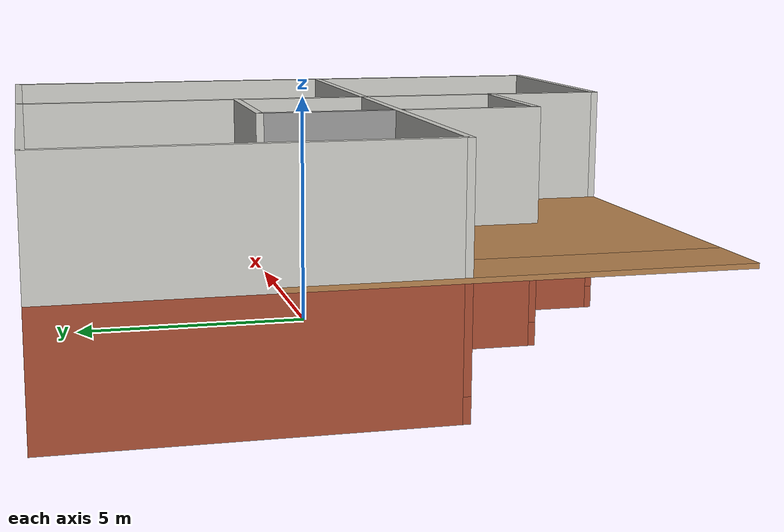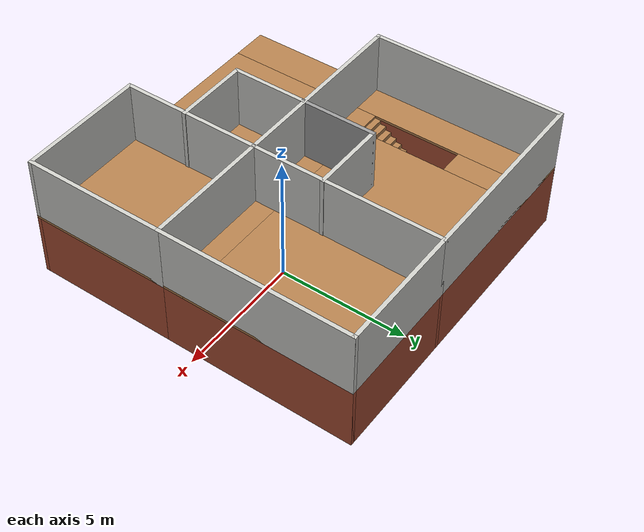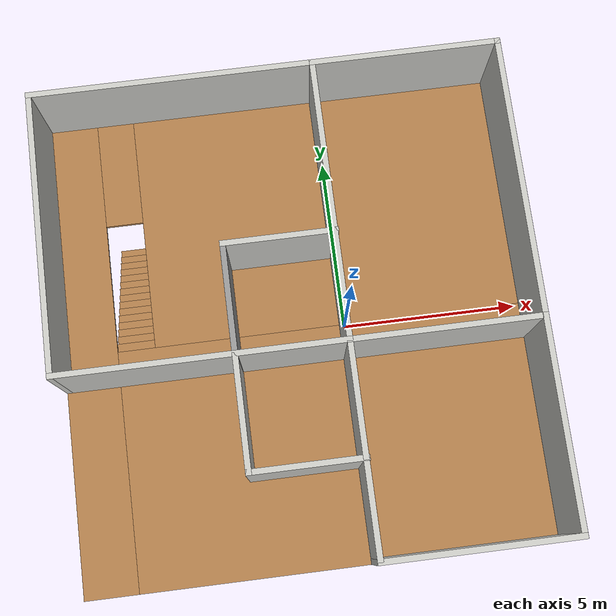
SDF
<?xml version='1.0'?>
<sdf version='1.7'>
  <model name='house'>
    <pose>-1.47441 -0.321633 0 0 -0 0</pose>
    <link name='Floor_0'>
      <pose>0 -0 2.5 0 -0 0</pose>
      <visual name='Floor_0_Visual_0'>
        <pose>-5.46939 0 0.05 0 -0 0</pose>
        <geometry>
          <box>
            <size>1.41122 12.85 0.1</size>
          </box>
        </geometry>
        <material>
          <script>
            <uri>file://media/materials/scripts/gazebo.material</uri>
            <name>Gazebo/Wood</name>
          </script>
          <ambient>1 1 1 1</ambient>
        </material>
        <meta>
          <layer>1</layer>
        </meta>
      </visual>
      <collision name='Floor_0_Collision_0'>
        <geometry>
          <box>
            <size>1.41122 12.85 0.1</size>
          </box>
        </geometry>
        <pose>-5.46939 0 0.05 0 -0 0</pose>
      </collision>
      <visual name='Floor_0_Visual_1'>
        <pose>0.705607 -3.27897 0.05 0 -0 0</pose>
        <geometry>
          <box>
            <size>10.9388 6.29206 0.1</size>
          </box>
        </geometry>
        <material>
          <script>
            <uri>file://media/materials/scripts/gazebo.material</uri>
            <name>Gazebo/Wood</name>
          </script>
          <ambient>1 1 1 1</ambient>
        </material>
        <meta>
          <layer>1</layer>
        </meta>
      </visual>
      <collision name='Floor_0_Collision_1'>
        <geometry>
          <box>
            <size>10.9388 6.29206 0.1</size>
          </box>
        </geometry>
        <pose>0.705607 -3.27897 0.05 0 -0 0</pose>
      </collision>
      <visual name='Floor_0_Visual_2'>
        <pose>1.20561 3.14603 0.05 0 -0 0</pose>
        <geometry>
          <box>
            <size>9.93878 6.55794 0.1</size>
          </box>
        </geometry>
        <material>
          <script>
            <uri>file://media/materials/scripts/gazebo.material</uri>
            <name>Gazebo/Wood</name>
          </script>
          <ambient>1 1 1 1</ambient>
        </material>
        <meta>
          <layer>1</layer>
        </meta>
      </visual>
      <collision name='Floor_0_Collision_2'>
        <geometry>
          <box>
            <size>9.93878 6.55794 0.1</size>
          </box>
        </geometry>
        <pose>1.20561 3.14603 0.05 0 -0 0</pose>
      </collision>
      <visual name='Floor_0_Visual_3'>
        <pose>-4.26379 4.89603 0.05 0 -0 0</pose>
        <geometry>
          <box>
            <size>1 3.05794 0.1</size>
          </box>
        </geometry>
        <material>
          <script>
            <uri>file://media/materials/scripts/gazebo.material</uri>
            <name>Gazebo/Wood</name>
          </script>
          <ambient>1 1 1 1</ambient>
        </material>
        <meta>
          <layer>1</layer>
        </meta>
      </visual>
      <collision name='Floor_0_Collision_3'>
        <geometry>
          <box>
            <size>1 3.05794 0.1</size>
          </box>
        </geometry>
        <pose>-4.26379 4.89603 0.05 0 -0 0</pose>
      </collision>
    </link>
    <link name='Stairs_0'>
      <visual name='Stairs_0_Visual_0'>
        <pose>-4.26379 3.25039 0.083333 0 -0 0</pose>
        <geometry>
          <box>
            <size>1 0.233333 0.166667</size>
          </box>
        </geometry>
        <material>
          <script>
            <uri>file://media/materials/scripts/gazebo.material</uri>
            <name>Gazebo/Wood</name>
          </script>
          <ambient>1 1 1 1</ambient>
        </material>
        <meta>
          <layer>0</layer>
        </meta>
      </visual>
      <collision name='Stairs_0_Collision_0'>
        <geometry>
          <box>
            <size>1 0.233333 0.166667</size>
          </box>
        </geometry>
        <pose>-4.26379 3.25039 0.083333 0 -0 0</pose>
      </collision>
      <visual name='Stairs_0_Visual_1'>
        <pose>-4.26379 3.01706 0.25 0 -0 0</pose>
        <geometry>
          <box>
            <size>1 0.233333 0.166667</size>
          </box>
        </geometry>
        <material>
          <script>
            <uri>file://media/materials/scripts/gazebo.material</uri>
            <name>Gazebo/Wood</name>
          </script>
          <ambient>1 1 1 1</ambient>
        </material>
        <meta>
          <layer>0</layer>
        </meta>
      </visual>
      <collision name='Stairs_0_Collision_1'>
        <geometry>
          <box>
            <size>1 0.233333 0.166667</size>
          </box>
        </geometry>
        <pose>-4.26379 3.01706 0.25 0 -0 0</pose>
      </collision>
      <visual name='Stairs_0_Visual_2'>
        <pose>-4.26379 2.78373 0.416667 0 -0 0</pose>
        <geometry>
          <box>
            <size>1 0.233333 0.166667</size>
          </box>
        </geometry>
        <material>
          <script>
            <uri>file://media/materials/scripts/gazebo.material</uri>
            <name>Gazebo/Wood</name>
          </script>
          <ambient>1 1 1 1</ambient>
        </material>
        <meta>
          <layer>0</layer>
        </meta>
      </visual>
      <collision name='Stairs_0_Collision_2'>
        <geometry>
          <box>
            <size>1 0.233333 0.166667</size>
          </box>
        </geometry>
        <pose>-4.26379 2.78373 0.416667 0 -0 0</pose>
      </collision>
      <visual name='Stairs_0_Visual_3'>
        <pose>-4.26379 2.55039 0.583333 0 -0 0</pose>
        <geometry>
          <box>
            <size>1 0.233333 0.166667</size>
          </box>
        </geometry>
        <material>
          <script>
            <uri>file://media/materials/scripts/gazebo.material</uri>
            <name>Gazebo/Wood</name>
          </script>
          <ambient>1 1 1 1</ambient>
        </material>
        <meta>
          <layer>0</layer>
        </meta>
      </visual>
      <collision name='Stairs_0_Collision_3'>
        <geometry>
          <box>
            <size>1 0.233333 0.166667</size>
          </box>
        </geometry>
        <pose>-4.26379 2.55039 0.583333 0 -0 0</pose>
      </collision>
      <visual name='Stairs_0_Visual_4'>
        <pose>-4.26379 2.31706 0.75 0 -0 0</pose>
        <geometry>
          <box>
            <size>1 0.233333 0.166667</size>
          </box>
        </geometry>
        <material>
          <script>
            <uri>file://media/materials/scripts/gazebo.material</uri>
            <name>Gazebo/Wood</name>
          </script>
          <ambient>1 1 1 1</ambient>
        </material>
        <meta>
          <layer>0</layer>
        </meta>
      </visual>
      <collision name='Stairs_0_Collision_4'>
        <geometry>
          <box>
            <size>1 0.233333 0.166667</size>
          </box>
        </geometry>
        <pose>-4.26379 2.31706 0.75 0 -0 0</pose>
      </collision>
      <visual name='Stairs_0_Visual_5'>
        <pose>-4.26379 2.08373 0.916667 0 -0 0</pose>
        <geometry>
          <box>
            <size>1 0.233333 0.166667</size>
          </box>
        </geometry>
        <material>
          <script>
            <uri>file://media/materials/scripts/gazebo.material</uri>
            <name>Gazebo/Wood</name>
          </script>
          <ambient>1 1 1 1</ambient>
        </material>
        <meta>
          <layer>0</layer>
        </meta>
      </visual>
      <collision name='Stairs_0_Collision_5'>
        <geometry>
          <box>
            <size>1 0.233333 0.166667</size>
          </box>
        </geometry>
        <pose>-4.26379 2.08373 0.916667 0 -0 0</pose>
      </collision>
      <visual name='Stairs_0_Visual_6'>
        <pose>-4.26379 1.85039 1.08333 0 -0 0</pose>
        <geometry>
          <box>
            <size>1 0.233333 0.166667</size>
          </box>
        </geometry>
        <material>
          <script>
            <uri>file://media/materials/scripts/gazebo.material</uri>
            <name>Gazebo/Wood</name>
          </script>
          <ambient>1 1 1 1</ambient>
        </material>
        <meta>
          <layer>0</layer>
        </meta>
      </visual>
      <collision name='Stairs_0_Collision_6'>
        <geometry>
          <box>
            <size>1 0.233333 0.166667</size>
          </box>
        </geometry>
        <pose>-4.26379 1.85039 1.08333 0 -0 0</pose>
      </collision>
      <visual name='Stairs_0_Visual_7'>
        <pose>-4.26379 1.61706 1.25 0 -0 0</pose>
        <geometry>
          <box>
            <size>1 0.233333 0.166667</size>
          </box>
        </geometry>
        <material>
          <script>
            <uri>file://media/materials/scripts/gazebo.material</uri>
            <name>Gazebo/Wood</name>
          </script>
          <ambient>1 1 1 1</ambient>
        </material>
        <meta>
          <layer>0</layer>
        </meta>
      </visual>
      <collision name='Stairs_0_Collision_7'>
        <geometry>
          <box>
            <size>1 0.233333 0.166667</size>
          </box>
        </geometry>
        <pose>-4.26379 1.61706 1.25 0 -0 0</pose>
      </collision>
      <visual name='Stairs_0_Visual_8'>
        <pose>-4.26379 1.38373 1.41667 0 -0 0</pose>
        <geometry>
          <box>
            <size>1 0.233333 0.166667</size>
          </box>
        </geometry>
        <material>
          <script>
            <uri>file://media/materials/scripts/gazebo.material</uri>
            <name>Gazebo/Wood</name>
          </script>
          <ambient>1 1 1 1</ambient>
        </material>
        <meta>
          <layer>0</layer>
        </meta>
      </visual>
      <collision name='Stairs_0_Collision_8'>
        <geometry>
          <box>
            <size>1 0.233333 0.166667</size>
          </box>
        </geometry>
        <pose>-4.26379 1.38373 1.41667 0 -0 0</pose>
      </collision>
      <visual name='Stairs_0_Visual_9'>
        <pose>-4.26379 1.15039 1.58333 0 -0 0</pose>
        <geometry>
          <box>
            <size>1 0.233333 0.166667</size>
          </box>
        </geometry>
        <material>
          <script>
            <uri>file://media/materials/scripts/gazebo.material</uri>
            <name>Gazebo/Wood</name>
          </script>
          <ambient>1 1 1 1</ambient>
        </material>
        <meta>
          <layer>0</layer>
        </meta>
      </visual>
      <collision name='Stairs_0_Collision_9'>
        <geometry>
          <box>
            <size>1 0.233333 0.166667</size>
          </box>
        </geometry>
        <pose>-4.26379 1.15039 1.58333 0 -0 0</pose>
      </collision>
      <visual name='Stairs_0_Visual_10'>
        <pose>-4.26379 0.917061 1.75 0 -0 0</pose>
        <geometry>
          <box>
            <size>1 0.233333 0.166667</size>
          </box>
        </geometry>
        <material>
          <script>
            <uri>file://media/materials/scripts/gazebo.material</uri>
            <name>Gazebo/Wood</name>
          </script>
          <ambient>1 1 1 1</ambient>
        </material>
        <meta>
          <layer>0</layer>
        </meta>
      </visual>
      <collision name='Stairs_0_Collision_10'>
        <geometry>
          <box>
            <size>1 0.233333 0.166667</size>
          </box>
        </geometry>
        <pose>-4.26379 0.917061 1.75 0 -0 0</pose>
      </collision>
      <visual name='Stairs_0_Visual_11'>
        <pose>-4.26379 0.683727 1.91667 0 -0 0</pose>
        <geometry>
          <box>
            <size>1 0.233333 0.166667</size>
          </box>
        </geometry>
        <material>
          <script>
            <uri>file://media/materials/scripts/gazebo.material</uri>
            <name>Gazebo/Wood</name>
          </script>
          <ambient>1 1 1 1</ambient>
        </material>
        <meta>
          <layer>0</layer>
        </meta>
      </visual>
      <collision name='Stairs_0_Collision_11'>
        <geometry>
          <box>
            <size>1 0.233333 0.166667</size>
          </box>
        </geometry>
        <pose>-4.26379 0.683727 1.91667 0 -0 0</pose>
      </collision>
      <visual name='Stairs_0_Visual_12'>
        <pose>-4.26379 0.450394 2.08333 0 -0 0</pose>
        <geometry>
          <box>
            <size>1 0.233333 0.166667</size>
          </box>
        </geometry>
        <material>
          <script>
            <uri>file://media/materials/scripts/gazebo.material</uri>
            <name>Gazebo/Wood</name>
          </script>
          <ambient>1 1 1 1</ambient>
        </material>
        <meta>
          <layer>0</layer>
        </meta>
      </visual>
      <collision name='Stairs_0_Collision_12'>
        <geometry>
          <box>
            <size>1 0.233333 0.166667</size>
          </box>
        </geometry>
        <pose>-4.26379 0.450394 2.08333 0 -0 0</pose>
      </collision>
      <visual name='Stairs_0_Visual_13'>
        <pose>-4.26379 0.217061 2.25 0 -0 0</pose>
        <geometry>
          <box>
            <size>1 0.233333 0.166667</size>
          </box>
        </geometry>
        <material>
          <script>
            <uri>file://media/materials/scripts/gazebo.material</uri>
            <name>Gazebo/Wood</name>
          </script>
          <ambient>1 1 1 1</ambient>
        </material>
        <meta>
          <layer>0</layer>
        </meta>
      </visual>
      <collision name='Stairs_0_Collision_13'>
        <geometry>
          <box>
            <size>1 0.233333 0.166667</size>
          </box>
        </geometry>
        <pose>-4.26379 0.217061 2.25 0 -0 0</pose>
      </collision>
      <visual name='Stairs_0_Visual_14'>
        <pose>-4.26379 -0.016273 2.41667 0 -0 0</pose>
        <geometry>
          <box>
            <size>1 0.233333 0.166667</size>
          </box>
        </geometry>
        <material>
          <script>
            <uri>file://media/materials/scripts/gazebo.material</uri>
            <name>Gazebo/Wood</name>
          </script>
          <ambient>1 1 1 1</ambient>
        </material>
        <meta>
          <layer>0</layer>
        </meta>
      </visual>
      <collision name='Stairs_0_Collision_14'>
        <geometry>
          <box>
            <size>1 0.233333 0.166667</size>
          </box>
        </geometry>
        <pose>-4.26379 -0.016273 2.41667 0 -0 0</pose>
      </collision>
    </link>
    <link name='Wall_42'>
      <collision name='Wall_42_Collision'>
        <geometry>
          <box>
            <size>7.5 0.15 2.5</size>
          </box>
        </geometry>
        <pose>0 0 1.25 0 -0 0</pose>
      </collision>
      <visual name='Wall_42_Visual'>
        <pose>0 0 1.25 0 -0 0</pose>
        <geometry>
          <box>
            <size>7.5 0.15 2.5</size>
          </box>
        </geometry>
        <material>
          <script>
            <uri>file://media/materials/scripts/gazebo.material</uri>
            <name>Gazebo/Bricks</name>
          </script>
          <ambient>1 1 1 1</ambient>
        </material>
        <meta>
          <layer>0</layer>
        </meta>
      </visual>
      <pose>-2.425 6.35 0 0 -0 0</pose>
    </link>
    <link name='Wall_43'>
      <pose>1.25 2.675 0 0 -0 -1.5708</pose>
      <visual name='Wall_43_Visual_0'>
        <pose>-1.07719 0 1.25 0 -0 0</pose>
        <geometry>
          <box>
            <size>5.34563 0.15 2.5</size>
          </box>
        </geometry>
        <material>
          <script>
            <uri>file://media/materials/scripts/gazebo.material</uri>
            <name>Gazebo/Bricks</name>
          </script>
          <ambient>1 1 1 1</ambient>
        </material>
        <meta>
          <layer>0</layer>
        </meta>
      </visual>
      <collision name='Wall_43_Collision_0'>
        <geometry>
          <box>
            <size>5.34563 0.15 2.5</size>
          </box>
        </geometry>
        <pose>-1.07719 0 1.25 0 -0 0</pose>
      </collision>
      <visual name='Wall_43_Visual_1'>
        <pose>3.12281 0 1.25 0 -0 0</pose>
        <geometry>
          <box>
            <size>1.25437 0.15 2.5</size>
          </box>
        </geometry>
        <material>
          <script>
            <uri>file://media/materials/scripts/gazebo.material</uri>
            <name>Gazebo/Bricks</name>
          </script>
          <ambient>1 1 1 1</ambient>
        </material>
        <meta>
          <layer>0</layer>
        </meta>
      </visual>
      <collision name='Wall_43_Collision_1'>
        <geometry>
          <box>
            <size>1.25437 0.15 2.5</size>
          </box>
        </geometry>
        <pose>3.12281 0 1.25 0 -0 0</pose>
      </collision>
      <visual name='Wall_43_Visual_2'>
        <pose>2.04563 0 2.25 0 -0 0</pose>
        <geometry>
          <box>
            <size>0.9 0.15 0.5</size>
          </box>
        </geometry>
        <material>
          <script>
            <uri>file://media/materials/scripts/gazebo.material</uri>
            <name>Gazebo/Bricks</name>
          </script>
          <ambient>1 1 1 1</ambient>
        </material>
        <meta>
          <layer>0</layer>
        </meta>
      </visual>
      <collision name='Wall_43_Collision_2'>
        <geometry>
          <box>
            <size>0.9 0.15 0.5</size>
          </box>
        </geometry>
        <pose>2.04563 0 2.25 0 -0 0</pose>
      </collision>
    </link>
    <link name='Wall_44'>
      <pose>-2.425 -1 0 0 -0 3.14159</pose>
      <visual name='Wall_44_Visual_0'>
        <pose>-2.98492 0 1.25 0 -0 0</pose>
        <geometry>
          <box>
            <size>1.53015 0.15 2.5</size>
          </box>
        </geometry>
        <material>
          <script>
            <uri>file://media/materials/scripts/gazebo.material</uri>
            <name>Gazebo/Bricks</name>
          </script>
          <ambient>1 1 1 1</ambient>
        </material>
        <meta>
          <layer>0</layer>
        </meta>
      </visual>
      <collision name='Wall_44_Collision_0'>
        <geometry>
          <box>
            <size>1.53015 0.15 2.5</size>
          </box>
        </geometry>
        <pose>-2.98492 0 1.25 0 -0 0</pose>
      </collision>
      <visual name='Wall_44_Visual_1'>
        <pose>-0.001671 0 1.25 0 -0 0</pose>
        <geometry>
          <box>
            <size>2.63635 0.15 2.5</size>
          </box>
        </geometry>
        <material>
          <script>
            <uri>file://media/materials/scripts/gazebo.material</uri>
            <name>Gazebo/Bricks</name>
          </script>
          <ambient>1 1 1 1</ambient>
        </material>
        <meta>
          <layer>0</layer>
        </meta>
      </visual>
      <collision name='Wall_44_Collision_1'>
        <geometry>
          <box>
            <size>2.63635 0.15 2.5</size>
          </box>
        </geometry>
        <pose>-0.001671 0 1.25 0 -0 0</pose>
      </collision>
      <visual name='Wall_44_Visual_2'>
        <pose>2.53325 0 0.25 0 -0 0</pose>
        <geometry>
          <box>
            <size>2.4335 0.15 0.5</size>
          </box>
        </geometry>
        <material>
          <script>
            <uri>file://media/materials/scripts/gazebo.material</uri>
            <name>Gazebo/Bricks</name>
          </script>
          <ambient>1 1 1 1</ambient>
        </material>
        <meta>
          <layer>0</layer>
        </meta>
      </visual>
      <collision name='Wall_44_Collision_2'>
        <geometry>
          <box>
            <size>2.4335 0.15 0.5</size>
          </box>
        </geometry>
        <pose>2.53325 0 0.25 0 -0 0</pose>
      </collision>
      <visual name='Wall_44_Visual_3'>
        <pose>2.93325 0 1.5 0 -0 0</pose>
        <geometry>
          <box>
            <size>1.63349 0.15 2</size>
          </box>
        </geometry>
        <material>
          <script>
            <uri>file://media/materials/scripts/gazebo.material</uri>
            <name>Gazebo/Bricks</name>
          </script>
          <ambient>1 1 1 1</ambient>
        </material>
        <meta>
          <layer>0</layer>
        </meta>
      </visual>
      <collision name='Wall_44_Collision_3'>
        <geometry>
          <box>
            <size>1.63349 0.15 2</size>
          </box>
        </geometry>
        <pose>2.93325 0 1.5 0 -0 0</pose>
      </collision>
      <visual name='Wall_44_Visual_4'>
        <pose>1.7165 0 1.9 0 -0 0</pose>
        <geometry>
          <box>
            <size>0.8 0.15 1.2</size>
          </box>
        </geometry>
        <material>
          <script>
            <uri>file://media/materials/scripts/gazebo.material</uri>
            <name>Gazebo/Bricks</name>
          </script>
          <ambient>1 1 1 1</ambient>
        </material>
        <meta>
          <layer>0</layer>
        </meta>
      </visual>
      <collision name='Wall_44_Collision_4'>
        <geometry>
          <box>
            <size>0.8 0.15 1.2</size>
          </box>
        </geometry>
        <pose>1.7165 0 1.9 0 -0 0</pose>
      </collision>
      <visual name='Wall_44_Visual_5'>
        <pose>-1.76985 0 2.25 0 -0 0</pose>
        <geometry>
          <box>
            <size>0.9 0.15 0.5</size>
          </box>
        </geometry>
        <material>
          <script>
            <uri>file://media/materials/scripts/gazebo.material</uri>
            <name>Gazebo/Bricks</name>
          </script>
          <ambient>1 1 1 1</ambient>
        </material>
        <meta>
          <layer>0</layer>
        </meta>
      </visual>
      <collision name='Wall_44_Collision_5'>
        <geometry>
          <box>
            <size>0.9 0.15 0.5</size>
          </box>
        </geometry>
        <pose>-1.76985 0 2.25 0 -0 0</pose>
      </collision>
    </link>
    <link name='Wall_45'>
      <collision name='Wall_45_Collision'>
        <geometry>
          <box>
            <size>7.5 0.15 2.5</size>
          </box>
        </geometry>
        <pose>0 0 1.25 0 -0 0</pose>
      </collision>
      <visual name='Wall_45_Visual'>
        <pose>0 0 1.25 0 -0 0</pose>
        <geometry>
          <box>
            <size>7.5 0.15 2.5</size>
          </box>
        </geometry>
        <material>
          <script>
            <uri>file://media/materials/scripts/gazebo.material</uri>
            <name>Gazebo/Bricks</name>
          </script>
          <ambient>1 1 1 1</ambient>
        </material>
        <meta>
          <layer>0</layer>
        </meta>
      </visual>
      <pose>-6.1 2.675 0 0 -0 1.5708</pose>
    </link>
    <link name='Wall_47'>
      <collision name='Wall_47_Collision'>
        <geometry>
          <box>
            <size>5 0.15 2.5</size>
          </box>
        </geometry>
        <pose>0 0 1.25 0 -0 0</pose>
      </collision>
      <visual name='Wall_47_Visual'>
        <pose>0 0 1.25 0 -0 0</pose>
        <geometry>
          <box>
            <size>5 0.15 2.5</size>
          </box>
        </geometry>
        <material>
          <script>
            <uri>file://media/materials/scripts/gazebo.material</uri>
            <name>Gazebo/Bricks</name>
          </script>
          <ambient>1 1 1 1</ambient>
        </material>
        <meta>
          <layer>0</layer>
        </meta>
      </visual>
      <pose>3.675 6.35 0 0 -0 0</pose>
    </link>
    <link name='Wall_48'>
      <collision name='Wall_48_Collision'>
        <geometry>
          <box>
            <size>7.5 0.15 2.5</size>
          </box>
        </geometry>
        <pose>0 0 1.25 0 -0 0</pose>
      </collision>
      <visual name='Wall_48_Visual'>
        <pose>0 0 1.25 0 -0 0</pose>
        <geometry>
          <box>
            <size>7.5 0.15 2.5</size>
          </box>
        </geometry>
        <material>
          <script>
            <uri>file://media/materials/scripts/gazebo.material</uri>
            <name>Gazebo/Bricks</name>
          </script>
          <ambient>1 1 1 1</ambient>
        </material>
        <meta>
          <layer>0</layer>
        </meta>
      </visual>
      <pose>6.1 2.675 0 0 -0 -1.5708</pose>
    </link>
    <link name='Wall_49'>
      <collision name='Wall_49_Collision'>
        <geometry>
          <box>
            <size>5.5 0.15 2.5</size>
          </box>
        </geometry>
        <pose>0 0 1.25 0 -0 0</pose>
      </collision>
      <visual name='Wall_49_Visual'>
        <pose>0 0 1.25 0 -0 0</pose>
        <geometry>
          <box>
            <size>5.5 0.15 2.5</size>
          </box>
        </geometry>
        <material>
          <script>
            <uri>file://media/materials/scripts/gazebo.material</uri>
            <name>Gazebo/Bricks</name>
          </script>
          <ambient>1 1 1 1</ambient>
        </material>
        <meta>
          <layer>0</layer>
        </meta>
      </visual>
      <pose>6.1 -3.675 0 0 -0 -1.5708</pose>
    </link>
    <link name='Wall_50'>
      <pose>3.675 -6.35 0 0 -0 3.14159</pose>
      <visual name='Wall_50_Visual_0'>
        <pose>-1.42532 0 1.25 0 -0 0</pose>
        <geometry>
          <box>
            <size>2.14936 0.15 2.5</size>
          </box>
        </geometry>
        <material>
          <script>
            <uri>file://media/materials/scripts/gazebo.material</uri>
            <name>Gazebo/Bricks</name>
          </script>
          <ambient>1 1 1 1</ambient>
        </material>
        <meta>
          <layer>0</layer>
        </meta>
      </visual>
      <collision name='Wall_50_Collision_0'>
        <geometry>
          <box>
            <size>2.14936 0.15 2.5</size>
          </box>
        </geometry>
        <pose>-1.42532 0 1.25 0 -0 0</pose>
      </collision>
      <visual name='Wall_50_Visual_1'>
        <pose>1.07468 0 0.25 0 -0 0</pose>
        <geometry>
          <box>
            <size>2.85064 0.15 0.5</size>
          </box>
        </geometry>
        <material>
          <script>
            <uri>file://media/materials/scripts/gazebo.material</uri>
            <name>Gazebo/Bricks</name>
          </script>
          <ambient>1 1 1 1</ambient>
        </material>
        <meta>
          <layer>0</layer>
        </meta>
      </visual>
      <collision name='Wall_50_Collision_1'>
        <geometry>
          <box>
            <size>2.85064 0.15 0.5</size>
          </box>
        </geometry>
        <pose>1.07468 0 0.25 0 -0 0</pose>
      </collision>
      <visual name='Wall_50_Visual_2'>
        <pose>1.47468 0 1.5 0 -0 0</pose>
        <geometry>
          <box>
            <size>2.05064 0.15 2</size>
          </box>
        </geometry>
        <material>
          <script>
            <uri>file://media/materials/scripts/gazebo.material</uri>
            <name>Gazebo/Bricks</name>
          </script>
          <ambient>1 1 1 1</ambient>
        </material>
        <meta>
          <layer>0</layer>
        </meta>
      </visual>
      <collision name='Wall_50_Collision_2'>
        <geometry>
          <box>
            <size>2.05064 0.15 2</size>
          </box>
        </geometry>
        <pose>1.47468 0 1.5 0 -0 0</pose>
      </collision>
      <visual name='Wall_50_Visual_3'>
        <pose>0.049356 0 1.9 0 -0 0</pose>
        <geometry>
          <box>
            <size>0.8 0.15 1.2</size>
          </box>
        </geometry>
        <material>
          <script>
            <uri>file://media/materials/scripts/gazebo.material</uri>
            <name>Gazebo/Bricks</name>
          </script>
          <ambient>1 1 1 1</ambient>
        </material>
        <meta>
          <layer>0</layer>
        </meta>
      </visual>
      <collision name='Wall_50_Collision_3'>
        <geometry>
          <box>
            <size>0.8 0.15 1.2</size>
          </box>
        </geometry>
        <pose>0.049356 0 1.9 0 -0 0</pose>
      </collision>
    </link>
    <link name='Wall_51'>
      <collision name='Wall_51_Collision'>
        <geometry>
          <box>
            <size>5.5 0.15 2.5</size>
          </box>
        </geometry>
        <pose>0 0 1.25 0 -0 0</pose>
      </collision>
      <visual name='Wall_51_Visual'>
        <pose>0 0 1.25 0 -0 0</pose>
        <geometry>
          <box>
            <size>5.5 0.15 2.5</size>
          </box>
        </geometry>
        <material>
          <script>
            <uri>file://media/materials/scripts/gazebo.material</uri>
            <name>Gazebo/Bricks</name>
          </script>
          <ambient>1 1 1 1</ambient>
        </material>
        <meta>
          <layer>0</layer>
        </meta>
      </visual>
      <pose>1.25 -3.675 0 0 -0 1.5708</pose>
    </link>
    <link name='Wall_55'>
      <pose>-0.153638 -3.89754 0 0 -0 3.14159</pose>
      <visual name='Wall_55_Visual_0'>
        <pose>-0.908738 0 1.25 0 -0 0</pose>
        <geometry>
          <box>
            <size>1.18252 0.15 2.5</size>
          </box>
        </geometry>
        <material>
          <script>
            <uri>file://media/materials/scripts/gazebo.material</uri>
            <name>Gazebo/Bricks</name>
          </script>
          <ambient>1 1 1 1</ambient>
        </material>
        <meta>
          <layer>0</layer>
        </meta>
      </visual>
      <collision name='Wall_55_Collision_0'>
        <geometry>
          <box>
            <size>1.18252 0.15 2.5</size>
          </box>
        </geometry>
        <pose>-0.908738 0 1.25 0 -0 0</pose>
      </collision>
      <visual name='Wall_55_Visual_1'>
        <pose>0.591262 0 0.25 0 -0 0</pose>
        <geometry>
          <box>
            <size>1.81748 0.15 0.5</size>
          </box>
        </geometry>
        <material>
          <script>
            <uri>file://media/materials/scripts/gazebo.material</uri>
            <name>Gazebo/Bricks</name>
          </script>
          <ambient>1 1 1 1</ambient>
        </material>
        <meta>
          <layer>0</layer>
        </meta>
      </visual>
      <collision name='Wall_55_Collision_1'>
        <geometry>
          <box>
            <size>1.81748 0.15 0.5</size>
          </box>
        </geometry>
        <pose>0.591262 0 0.25 0 -0 0</pose>
      </collision>
      <visual name='Wall_55_Visual_2'>
        <pose>0.991262 0 1.5 0 -0 0</pose>
        <geometry>
          <box>
            <size>1.01748 0.15 2</size>
          </box>
        </geometry>
        <material>
          <script>
            <uri>file://media/materials/scripts/gazebo.material</uri>
            <name>Gazebo/Bricks</name>
          </script>
          <ambient>1 1 1 1</ambient>
        </material>
        <meta>
          <layer>0</layer>
        </meta>
      </visual>
      <collision name='Wall_55_Collision_2'>
        <geometry>
          <box>
            <size>1.01748 0.15 2</size>
          </box>
        </geometry>
        <pose>0.991262 0 1.5 0 -0 0</pose>
      </collision>
      <visual name='Wall_55_Visual_3'>
        <pose>0.082523 0 1.9 0 -0 0</pose>
        <geometry>
          <box>
            <size>0.8 0.15 1.2</size>
          </box>
        </geometry>
        <material>
          <script>
            <uri>file://media/materials/scripts/gazebo.material</uri>
            <name>Gazebo/Bricks</name>
          </script>
          <ambient>1 1 1 1</ambient>
        </material>
        <meta>
          <layer>0</layer>
        </meta>
      </visual>
      <collision name='Wall_55_Collision_3'>
        <geometry>
          <box>
            <size>0.8 0.15 1.2</size>
          </box>
        </geometry>
        <pose>0.082523 0 1.9 0 -0 0</pose>
      </collision>
    </link>
    <link name='Wall_56'>
      <collision name='Wall_56_Collision'>
        <geometry>
          <box>
            <size>3 0.15 2.5</size>
          </box>
        </geometry>
        <pose>0 0 1.25 0 -0 0</pose>
      </collision>
      <visual name='Wall_56_Visual'>
        <pose>0 0 1.25 0 -0 0</pose>
        <geometry>
          <box>
            <size>3 0.15 2.5</size>
          </box>
        </geometry>
        <material>
          <script>
            <uri>file://media/materials/scripts/gazebo.material</uri>
            <name>Gazebo/Bricks</name>
          </script>
          <ambient>1 1 1 1</ambient>
        </material>
        <meta>
          <layer>0</layer>
        </meta>
      </visual>
      <pose>-1.57864 -2.47254 0 0 -0 1.5708</pose>
    </link>
    <link name='Wall_58'>
      <pose>-1.57864 0.377458 0 0 -0 1.5708</pose>
      <visual name='Wall_58_Visual_0'>
        <pose>-0.835893 0 1.25 0 -0 0</pose>
        <geometry>
          <box>
            <size>1.32821 0.15 2.5</size>
          </box>
        </geometry>
        <material>
          <script>
            <uri>file://media/materials/scripts/gazebo.material</uri>
            <name>Gazebo/Bricks</name>
          </script>
          <ambient>1 1 1 1</ambient>
        </material>
        <meta>
          <layer>0</layer>
        </meta>
      </visual>
      <collision name='Wall_58_Collision_0'>
        <geometry>
          <box>
            <size>1.32821 0.15 2.5</size>
          </box>
        </geometry>
        <pose>-0.835893 0 1.25 0 -0 0</pose>
      </collision>
      <visual name='Wall_58_Visual_1'>
        <pose>1.11411 0 1.25 0 -0 0</pose>
        <geometry>
          <box>
            <size>0.771785 0.15 2.5</size>
          </box>
        </geometry>
        <material>
          <script>
            <uri>file://media/materials/scripts/gazebo.material</uri>
            <name>Gazebo/Bricks</name>
          </script>
          <ambient>1 1 1 1</ambient>
        </material>
        <meta>
          <layer>0</layer>
        </meta>
      </visual>
      <collision name='Wall_58_Collision_1'>
        <geometry>
          <box>
            <size>0.771785 0.15 2.5</size>
          </box>
        </geometry>
        <pose>1.11411 0 1.25 0 -0 0</pose>
      </collision>
      <visual name='Wall_58_Visual_2'>
        <pose>0.278215 0 2.25 0 -0 0</pose>
        <geometry>
          <box>
            <size>0.9 0.15 0.5</size>
          </box>
        </geometry>
        <material>
          <script>
            <uri>file://media/materials/scripts/gazebo.material</uri>
            <name>Gazebo/Bricks</name>
          </script>
          <ambient>1 1 1 1</ambient>
        </material>
        <meta>
          <layer>0</layer>
        </meta>
      </visual>
      <collision name='Wall_58_Collision_2'>
        <geometry>
          <box>
            <size>0.9 0.15 0.5</size>
          </box>
        </geometry>
        <pose>0.278215 0 2.25 0 -0 0</pose>
      </collision>
    </link>
    <link name='Wall_59'>
      <collision name='Wall_59_Collision'>
        <geometry>
          <box>
            <size>3 0.15 2.5</size>
          </box>
        </geometry>
        <pose>0 0 1.25 0 -0 0</pose>
      </collision>
      <visual name='Wall_59_Visual'>
        <pose>0 0 1.25 0 -0 0</pose>
        <geometry>
          <box>
            <size>3 0.15 2.5</size>
          </box>
        </geometry>
        <material>
          <script>
            <uri>file://media/materials/scripts/gazebo.material</uri>
            <name>Gazebo/Bricks</name>
          </script>
          <ambient>1 1 1 1</ambient>
        </material>
        <meta>
          <layer>0</layer>
        </meta>
      </visual>
      <pose>-0.153638 1.80246 0 0 -0 0</pose>
    </link>
    <link name='Wall_61'>
      <pose>3.675 -1 0 0 -0 0</pose>
      <visual name='Wall_61_Visual_0'>
        <pose>-1.22645 0 1.25 0 -0 0</pose>
        <geometry>
          <box>
            <size>2.5471 0.15 2.5</size>
          </box>
        </geometry>
        <material>
          <script>
            <uri>file://media/materials/scripts/gazebo.material</uri>
            <name>Gazebo/Bricks</name>
          </script>
          <ambient>1 1 1 1</ambient>
        </material>
        <meta>
          <layer>0</layer>
        </meta>
      </visual>
      <collision name='Wall_61_Collision_0'>
        <geometry>
          <box>
            <size>2.5471 0.15 2.5</size>
          </box>
        </geometry>
        <pose>-1.22645 0 1.25 0 -0 0</pose>
      </collision>
      <visual name='Wall_61_Visual_1'>
        <pose>1.72355 0 1.25 0 -0 0</pose>
        <geometry>
          <box>
            <size>1.5529 0.15 2.5</size>
          </box>
        </geometry>
        <material>
          <script>
            <uri>file://media/materials/scripts/gazebo.material</uri>
            <name>Gazebo/Bricks</name>
          </script>
          <ambient>1 1 1 1</ambient>
        </material>
        <meta>
          <layer>0</layer>
        </meta>
      </visual>
      <collision name='Wall_61_Collision_1'>
        <geometry>
          <box>
            <size>1.5529 0.15 2.5</size>
          </box>
        </geometry>
        <pose>1.72355 0 1.25 0 -0 0</pose>
      </collision>
      <visual name='Wall_61_Visual_2'>
        <pose>0.497104 0 2.25 0 -0 0</pose>
        <geometry>
          <box>
            <size>0.9 0.15 0.5</size>
          </box>
        </geometry>
        <material>
          <script>
            <uri>file://media/materials/scripts/gazebo.material</uri>
            <name>Gazebo/Bricks</name>
          </script>
          <ambient>1 1 1 1</ambient>
        </material>
        <meta>
          <layer>0</layer>
        </meta>
      </visual>
      <collision name='Wall_61_Collision_2'>
        <geometry>
          <box>
            <size>0.9 0.15 0.5</size>
          </box>
        </geometry>
        <pose>0.497104 0 2.25 0 -0 0</pose>
      </collision>
    </link>
    <link name='Wall_63'>
      <collision name='Wall_63_Collision'>
        <geometry>
          <box>
            <size>7.5 0.15 2.5</size>
          </box>
        </geometry>
        <pose>0 0 1.25 0 -0 0</pose>
      </collision>
      <visual name='Wall_63_Visual'>
        <pose>0 0 1.25 0 -0 0</pose>
        <geometry>
          <box>
            <size>7.5 0.15 2.5</size>
          </box>
        </geometry>
        <material>
          <script>
            <uri>file://media/materials/scripts/gazebo.material</uri>
            <name>Gazebo/CeilingTiled</name>
          </script>
          <ambient>1 1 1 1</ambient>
        </material>
        <meta>
          <layer>1</layer>
        </meta>
      </visual>
      <pose>-2.425 6.35 2.5 0 -0 0</pose>
    </link>
    <link name='Wall_64'>
      <collision name='Wall_64_Collision'>
        <geometry>
          <box>
            <size>7.5 0.15 2.5</size>
          </box>
        </geometry>
        <pose>0 0 1.25 0 -0 0</pose>
      </collision>
      <visual name='Wall_64_Visual'>
        <pose>0 0 1.25 0 -0 0</pose>
        <geometry>
          <box>
            <size>7.5 0.15 2.5</size>
          </box>
        </geometry>
        <material>
          <script>
            <uri>file://media/materials/scripts/gazebo.material</uri>
            <name>Gazebo/CeilingTiled</name>
          </script>
          <ambient>1 1 1 1</ambient>
        </material>
        <meta>
          <layer>1</layer>
        </meta>
      </visual>
      <pose>1.25 2.675 2.5 0 -0 -1.5708</pose>
    </link>
    <link name='Wall_65'>
      <collision name='Wall_65_Collision'>
        <geometry>
          <box>
            <size>7.5 0.15 2.5</size>
          </box>
        </geometry>
        <pose>0 0 1.25 0 -0 0</pose>
      </collision>
      <visual name='Wall_65_Visual'>
        <pose>0 0 1.25 0 -0 0</pose>
        <geometry>
          <box>
            <size>7.5 0.15 2.5</size>
          </box>
        </geometry>
        <material>
          <script>
            <uri>file://media/materials/scripts/gazebo.material</uri>
            <name>Gazebo/CeilingTiled</name>
          </script>
          <ambient>1 1 1 1</ambient>
        </material>
        <meta>
          <layer>1</layer>
        </meta>
      </visual>
      <pose>-2.425 -1 2.5 0 -0 3.14159</pose>
    </link>
    <link name='Wall_66'>
      <collision name='Wall_66_Collision'>
        <geometry>
          <box>
            <size>7.5 0.15 2.5</size>
          </box>
        </geometry>
        <pose>0 0 1.25 0 -0 0</pose>
      </collision>
      <visual name='Wall_66_Visual'>
        <pose>0 0 1.25 0 -0 0</pose>
        <geometry>
          <box>
            <size>7.5 0.15 2.5</size>
          </box>
        </geometry>
        <material>
          <script>
            <uri>file://media/materials/scripts/gazebo.material</uri>
            <name>Gazebo/CeilingTiled</name>
          </script>
          <ambient>1 1 1 1</ambient>
        </material>
        <meta>
          <layer>1</layer>
        </meta>
      </visual>
      <pose>-6.1 2.675 2.5 0 -0 1.5708</pose>
    </link>
    <link name='Wall_67'>
      <collision name='Wall_67_Collision'>
        <geometry>
          <box>
            <size>5 0.15 2.5</size>
          </box>
        </geometry>
        <pose>0 0 1.25 0 -0 0</pose>
      </collision>
      <visual name='Wall_67_Visual'>
        <pose>0 0 1.25 0 -0 0</pose>
        <geometry>
          <box>
            <size>5 0.15 2.5</size>
          </box>
        </geometry>
        <material>
          <script>
            <uri>file://media/materials/scripts/gazebo.material</uri>
            <name>Gazebo/CeilingTiled</name>
          </script>
          <ambient>1 1 1 1</ambient>
        </material>
        <meta>
          <layer>1</layer>
        </meta>
      </visual>
      <pose>3.675 6.35 2.5 0 -0 0</pose>
    </link>
    <link name='Wall_68'>
      <collision name='Wall_68_Collision'>
        <geometry>
          <box>
            <size>7.5 0.15 2.5</size>
          </box>
        </geometry>
        <pose>0 0 1.25 0 -0 0</pose>
      </collision>
      <visual name='Wall_68_Visual'>
        <pose>0 0 1.25 0 -0 0</pose>
        <geometry>
          <box>
            <size>7.5 0.15 2.5</size>
          </box>
        </geometry>
        <material>
          <script>
            <uri>file://media/materials/scripts/gazebo.material</uri>
            <name>Gazebo/CeilingTiled</name>
          </script>
          <ambient>1 1 1 1</ambient>
        </material>
        <meta>
          <layer>1</layer>
        </meta>
      </visual>
      <pose>6.1 2.675 2.5 0 -0 -1.5708</pose>
    </link>
    <link name='Wall_69'>
      <collision name='Wall_69_Collision'>
        <geometry>
          <box>
            <size>5.5 0.15 2.5</size>
          </box>
        </geometry>
        <pose>0 0 1.25 0 -0 0</pose>
      </collision>
      <visual name='Wall_69_Visual'>
        <pose>0 0 1.25 0 -0 0</pose>
        <geometry>
          <box>
            <size>5.5 0.15 2.5</size>
          </box>
        </geometry>
        <material>
          <script>
            <uri>file://media/materials/scripts/gazebo.material</uri>
            <name>Gazebo/CeilingTiled</name>
          </script>
          <ambient>1 1 1 1</ambient>
        </material>
        <meta>
          <layer>1</layer>
        </meta>
      </visual>
      <pose>6.1 -3.675 2.5 0 -0 -1.5708</pose>
    </link>
    <link name='Wall_70'>
      <collision name='Wall_70_Collision'>
        <geometry>
          <box>
            <size>5 0.15 2.5</size>
          </box>
        </geometry>
        <pose>0 0 1.25 0 -0 0</pose>
      </collision>
      <visual name='Wall_70_Visual'>
        <pose>0 0 1.25 0 -0 0</pose>
        <geometry>
          <box>
            <size>5 0.15 2.5</size>
          </box>
        </geometry>
        <material>
          <script>
            <uri>file://media/materials/scripts/gazebo.material</uri>
            <name>Gazebo/CeilingTiled</name>
          </script>
          <ambient>1 1 1 1</ambient>
        </material>
        <meta>
          <layer>1</layer>
        </meta>
      </visual>
      <pose>3.675 -6.35 2.5 0 -0 3.14159</pose>
    </link>
    <link name='Wall_71'>
      <collision name='Wall_71_Collision'>
        <geometry>
          <box>
            <size>5.5 0.15 2.5</size>
          </box>
        </geometry>
        <pose>0 0 1.25 0 -0 0</pose>
      </collision>
      <visual name='Wall_71_Visual'>
        <pose>0 0 1.25 0 -0 0</pose>
        <geometry>
          <box>
            <size>5.5 0.15 2.5</size>
          </box>
        </geometry>
        <material>
          <script>
            <uri>file://media/materials/scripts/gazebo.material</uri>
            <name>Gazebo/CeilingTiled</name>
          </script>
          <ambient>1 1 1 1</ambient>
        </material>
        <meta>
          <layer>1</layer>
        </meta>
      </visual>
      <pose>1.25 -3.675 2.5 0 -0 1.5708</pose>
    </link>
    <link name='Wall_72'>
      <collision name='Wall_72_Collision'>
        <geometry>
          <box>
            <size>3 0.15 2.5</size>
          </box>
        </geometry>
        <pose>0 0 1.25 0 -0 0</pose>
      </collision>
      <visual name='Wall_72_Visual'>
        <pose>0 0 1.25 0 -0 0</pose>
        <geometry>
          <box>
            <size>3 0.15 2.5</size>
          </box>
        </geometry>
        <material>
          <script>
            <uri>file://media/materials/scripts/gazebo.material</uri>
            <name>Gazebo/CeilingTiled</name>
          </script>
          <ambient>1 1 1 1</ambient>
        </material>
        <meta>
          <layer>1</layer>
        </meta>
      </visual>
      <pose>-0.153638 -3.89754 2.5 0 -0 3.14159</pose>
    </link>
    <link name='Wall_73'>
      <collision name='Wall_73_Collision'>
        <geometry>
          <box>
            <size>3 0.15 2.5</size>
          </box>
        </geometry>
        <pose>0 0 1.25 0 -0 0</pose>
      </collision>
      <visual name='Wall_73_Visual'>
        <pose>0 0 1.25 0 -0 0</pose>
        <geometry>
          <box>
            <size>3 0.15 2.5</size>
          </box>
        </geometry>
        <material>
          <script>
            <uri>file://media/materials/scripts/gazebo.material</uri>
            <name>Gazebo/CeilingTiled</name>
          </script>
          <ambient>1 1 1 1</ambient>
        </material>
        <meta>
          <layer>1</layer>
        </meta>
      </visual>
      <pose>-1.57862 -2.47246 2.5 0 -0 1.57078</pose>
    </link>
    <link name='Wall_74'>
      <collision name='Wall_74_Collision'>
        <geometry>
          <box>
            <size>3 0.15 2.5</size>
          </box>
        </geometry>
        <pose>0 0 1.25 0 -0 0</pose>
      </collision>
      <visual name='Wall_74_Visual'>
        <pose>0 0 1.25 0 -0 0</pose>
        <geometry>
          <box>
            <size>3 0.15 2.5</size>
          </box>
        </geometry>
        <material>
          <script>
            <uri>file://media/materials/scripts/gazebo.material</uri>
            <name>Gazebo/Grey</name>
          </script>
          <ambient>1 1 1 1</ambient>
        </material>
        <meta>
          <layer>1</layer>
        </meta>
      </visual>
      <pose>-1.57859 0.377633 2.5 0 -0 1.5708</pose>
    </link>
    <link name='Wall_75'>
      <collision name='Wall_75_Collision'>
        <geometry>
          <box>
            <size>3 0.15 2.5</size>
          </box>
        </geometry>
        <pose>0 0 1.25 0 -0 0</pose>
      </collision>
      <visual name='Wall_75_Visual'>
        <pose>0 0 1.25 0 -0 0</pose>
        <geometry>
          <box>
            <size>3 0.15 2.5</size>
          </box>
        </geometry>
        <material>
          <script>
            <uri>file://media/materials/scripts/gazebo.material</uri>
            <name>Gazebo/CeilingTiled</name>
          </script>
          <ambient>1 1 1 1</ambient>
        </material>
        <meta>
          <layer>1</layer>
        </meta>
      </visual>
      <pose>-0.153616 1.80255 2.5 0 -0 -6.2e-05</pose>
    </link>
    <link name='Wall_76'>
      <collision name='Wall_76_Collision'>
        <geometry>
          <box>
            <size>5 0.15 2.5</size>
          </box>
        </geometry>
        <pose>0 0 1.25 0 -0 0</pose>
      </collision>
      <visual name='Wall_76_Visual'>
        <pose>0 0 1.25 0 -0 0</pose>
        <geometry>
          <box>
            <size>5 0.15 2.5</size>
          </box>
        </geometry>
        <material>
          <script>
            <uri>file://media/materials/scripts/gazebo.material</uri>
            <name>Gazebo/CeilingTiled</name>
          </script>
          <ambient>1 1 1 1</ambient>
        </material>
        <meta>
          <layer>1</layer>
        </meta>
      </visual>
      <pose>3.675 -1 2.5 0 -0 0</pose>
    </link>
    <static>1</static>
  </model>
</sdf>
